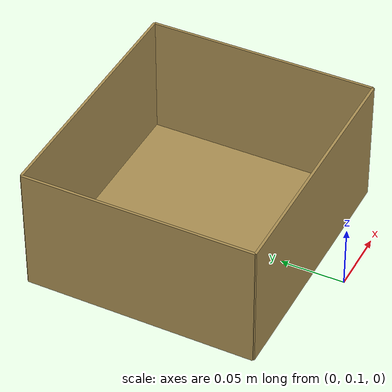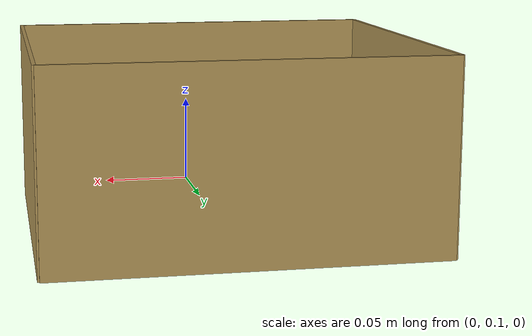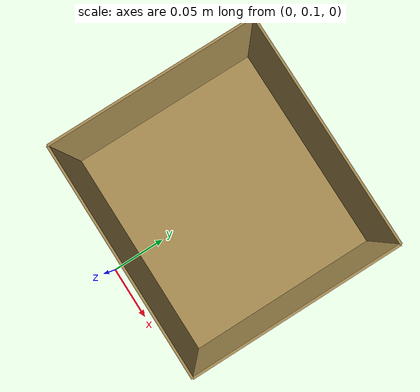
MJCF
<mujoco>

    <worldbody>

        <!-- box (len, width, height) = (20cm, 18cm, 10cm) -->
        <!-- box center position = (0, 21.5cm) -->
        <body name="box" pos="0.0 0.215 0.0">
            <joint name="box_joint" type="free"/>
            <geom condim="4" pos="0 0 0.001" size="0.10 0.09 0.001" type="box" name="box_bottom" rgba="0.671 0.565 0.325 1" mass="0.10"/>
            <geom condim="4" pos="-0.1 0 0.05" size="0.001 0.09 0.05" type="box" name="box_left" rgba="0.671 0.565 0.325 1" mass="0.10"/>
            <geom condim="4" pos="0.1 0 0.05" size="0.001 0.09 0.05" type="box" name="box_right" rgba="0.671 0.565 0.325 1" mass="0.10"/>
            <geom condim="4" pos="0 -0.09 0.05" size="0.10 0.001 0.05" type="box" name="box_front" rgba="0.671 0.565 0.325 1" mass="0.10"/>
            <geom condim="4" pos="0 0.09 0.05" size="0.10 0.001 0.05" type="box" name="box_end" rgba="0.671 0.565 0.325 1" mass="0.10"/>
        </body>

    </worldbody>

</mujoco>
